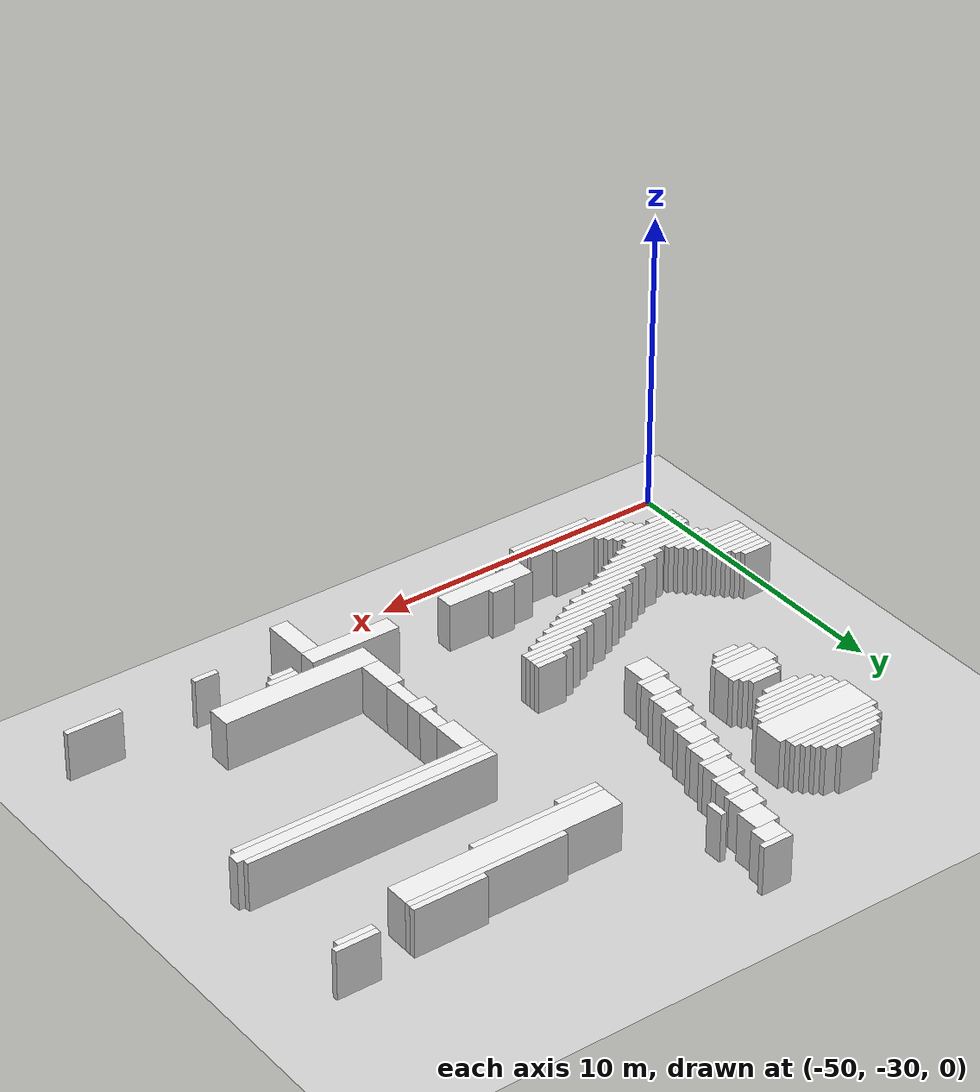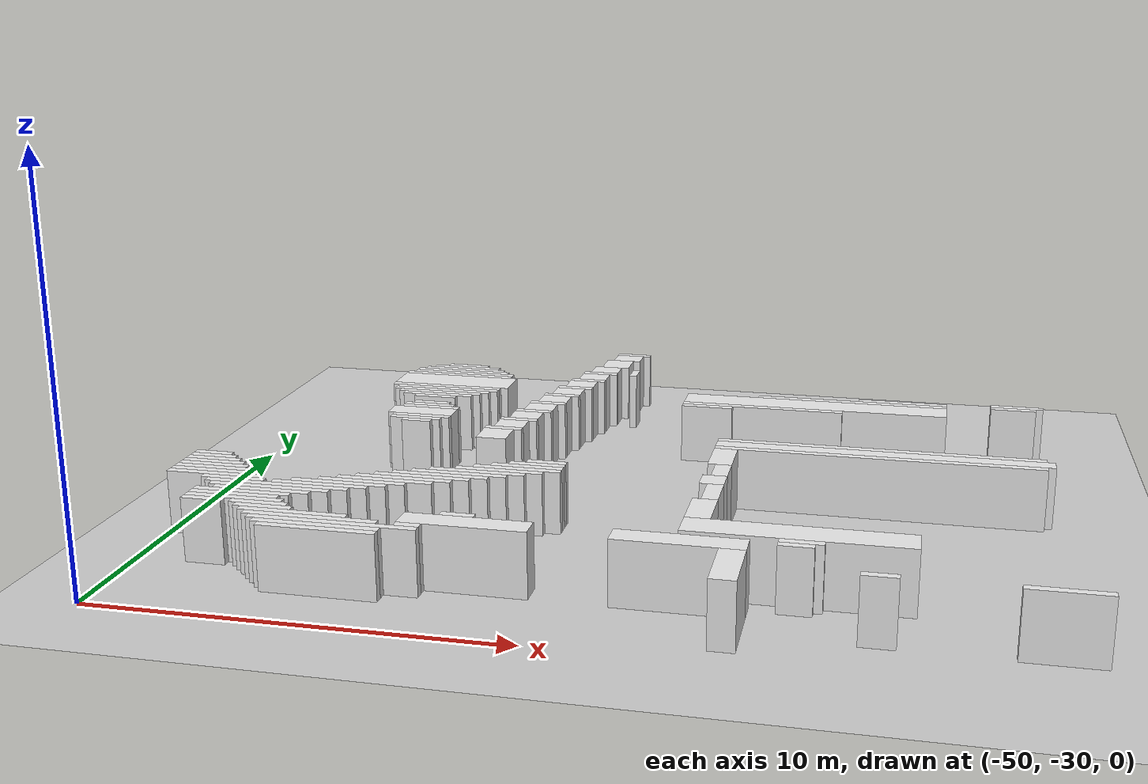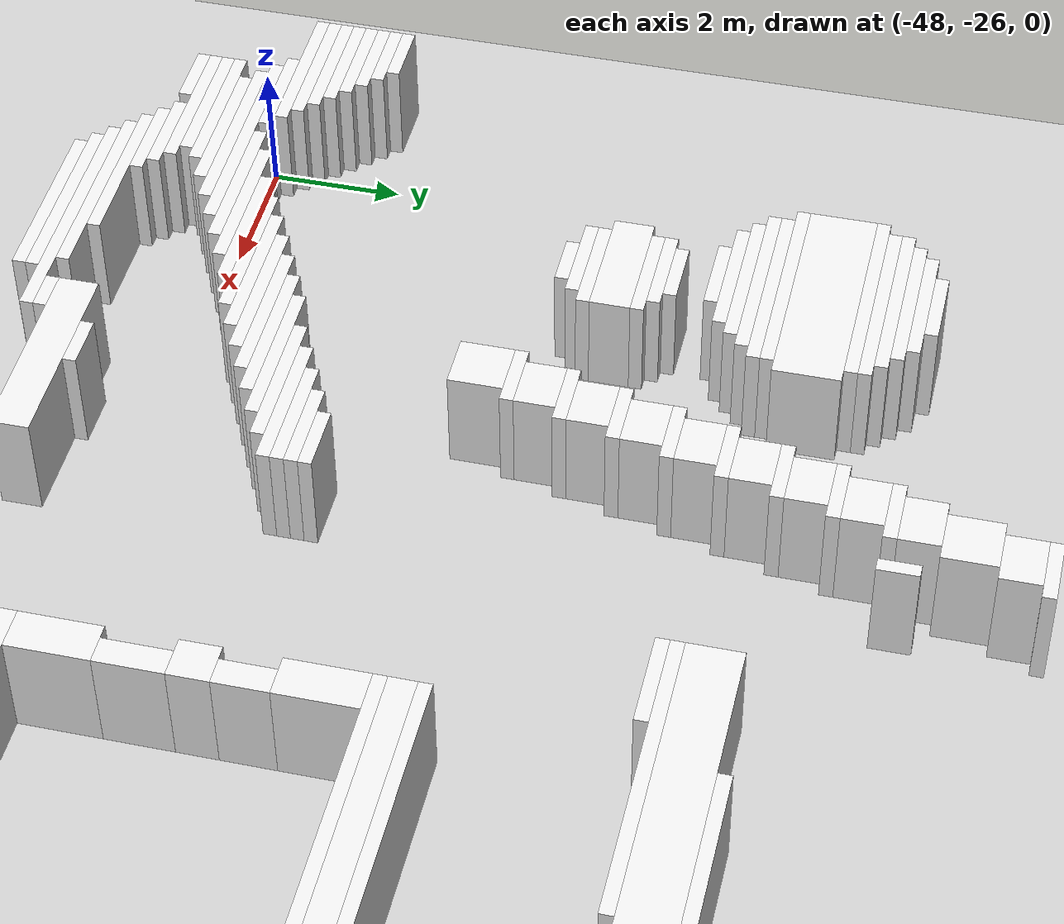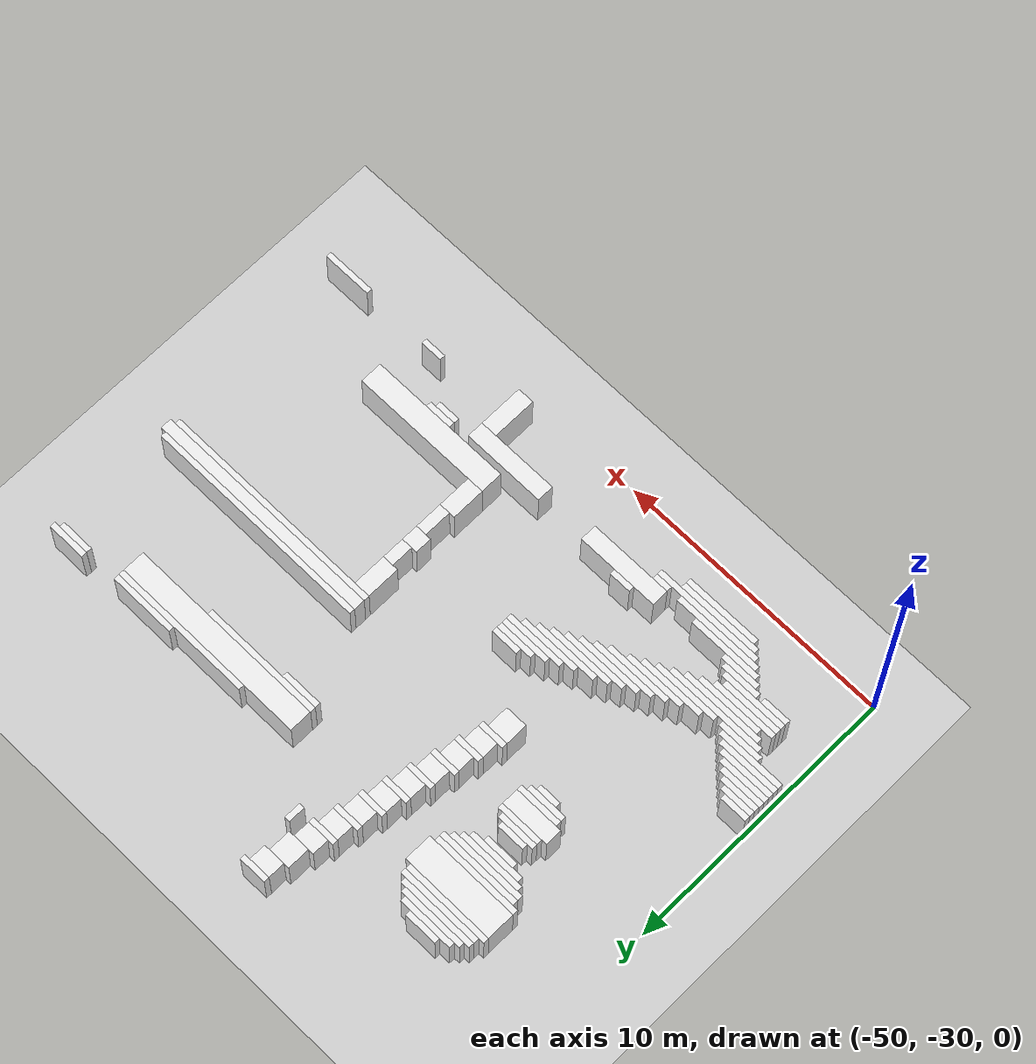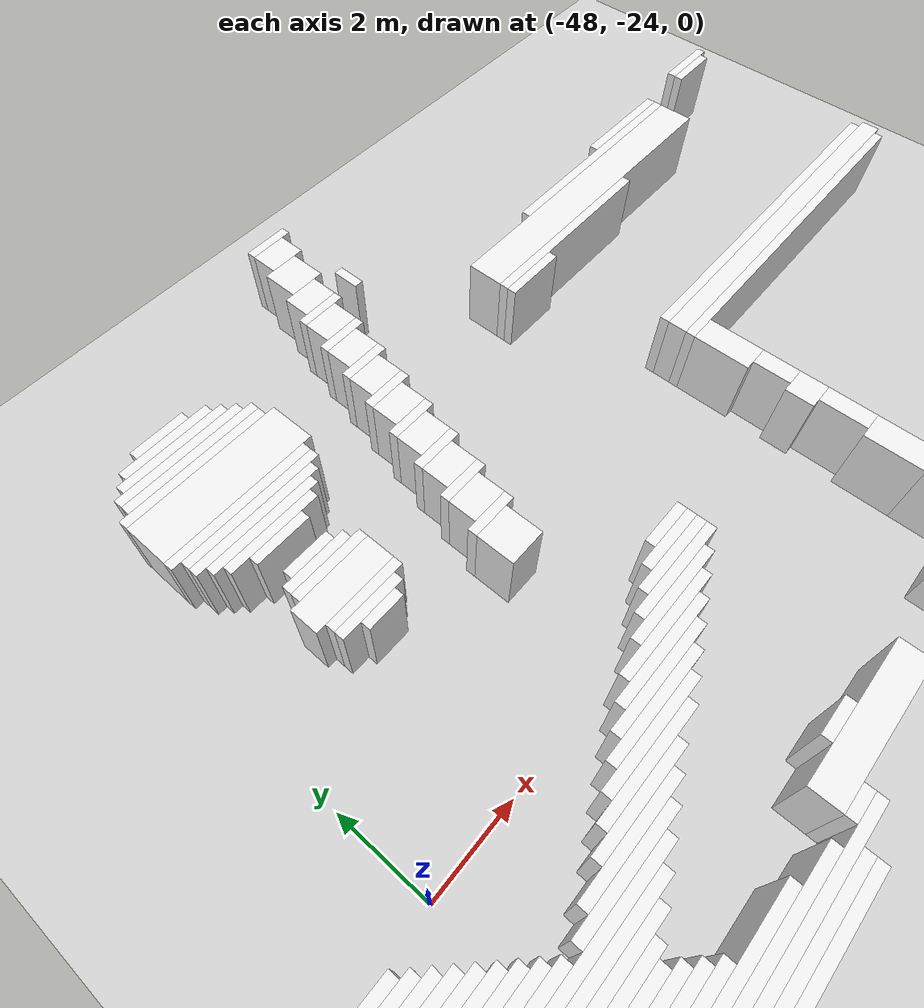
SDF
<sdf version="1.7">
 <world name="default">
  <model name="ground_plane">
   <static>1</static>
   <link name="link">
    <collision name="collision">
     <geometry><plane><normal>0 0 1</normal><size>120 120</size></plane></geometry>
    </collision>
    <visual name="visual">
     <geometry><plane><normal>0 0 1</normal><size>120 120</size></plane></geometry>
     <material>
      <script><uri>file://media/materials/scripts/gazebo.material</uri><name>Gazebo/Grey</name></script>
     </material>
    </visual>
   </link>
  </model>
  <model name="random_complex_01_model">
   <static>1</static>
   <link name="obs_2322">
    <pose>-40.9000 -13.1000 0.8000 0 0 0</pose>
    <collision name="obs_2322_col"><geometry><box><size>1.0000 0.2000 1.6000</size></box></geometry></collision>
    <visual name="obs_2322_vis">
     <geometry><box><size>1.0000 0.2000 1.6000</size></box></geometry>
     <material>
      <script><uri>file://media/materials/scripts/gazebo.material</uri><name>Gazebo/White</name></script>
     </material>
    </visual>
   </link>
   <link name="obs_2339">
    <pose>-41.0000 -13.5000 0.8000 0 0 0</pose>
    <collision name="obs_2339_col"><geometry><box><size>0.8000 0.6000 1.6000</size></box></geometry></collision>
    <visual name="obs_2339_vis">
     <geometry><box><size>0.8000 0.6000 1.6000</size></box></geometry>
     <material>
      <script><uri>file://media/materials/scripts/gazebo.material</uri><name>Gazebo/White</name></script>
     </material>
    </visual>
   </link>
   <link name="obs_2366">
    <pose>-41.2000 -14.2000 0.8000 0 0 0</pose>
    <collision name="obs_2366_col"><geometry><box><size>0.8000 0.8000 1.6000</size></box></geometry></collision>
    <visual name="obs_2366_vis">
     <geometry><box><size>0.8000 0.8000 1.6000</size></box></geometry>
     <material>
      <script><uri>file://media/materials/scripts/gazebo.material</uri><name>Gazebo/White</name></script>
     </material>
    </visual>
   </link>
   <link name="obs_2395">
    <pose>-41.4000 -14.9000 0.8000 0 0 0</pose>
    <collision name="obs_2395_col"><geometry><box><size>0.8000 0.6000 1.6000</size></box></geometry></collision>
    <visual name="obs_2395_vis">
     <geometry><box><size>0.8000 0.6000 1.6000</size></box></geometry>
     <material>
      <script><uri>file://media/materials/scripts/gazebo.material</uri><name>Gazebo/White</name></script>
     </material>
    </visual>
   </link>
   <link name="obs_2408">
    <pose>-40.5000 -15.1000 0.8000 0 0 0</pose>
    <collision name="obs_2408_col"><geometry><box><size>0.2000 0.6000 1.6000</size></box></geometry></collision>
    <visual name="obs_2408_vis">
     <geometry><box><size>0.2000 0.6000 1.6000</size></box></geometry>
     <material>
      <script><uri>file://media/materials/scripts/gazebo.material</uri><name>Gazebo/White</name></script>
     </material>
    </visual>
   </link>
   <link name="obs_2409">
    <pose>-45.6000 -15.3000 0.8000 0 0 0</pose>
    <collision name="obs_2409_col"><geometry><box><size>1.2000 0.2000 1.6000</size></box></geometry></collision>
    <visual name="obs_2409_vis">
     <geometry><box><size>1.2000 0.2000 1.6000</size></box></geometry>
     <material>
      <script><uri>file://media/materials/scripts/gazebo.material</uri><name>Gazebo/White</name></script>
     </material>
    </visual>
   </link>
   <link name="obs_2410">
    <pose>-41.5000 -15.3000 0.8000 0 0 0</pose>
    <collision name="obs_2410_col"><geometry><box><size>1.0000 0.2000 1.6000</size></box></geometry></collision>
    <visual name="obs_2410_vis">
     <geometry><box><size>1.0000 0.2000 1.6000</size></box></geometry>
     <material>
      <script><uri>file://media/materials/scripts/gazebo.material</uri><name>Gazebo/White</name></script>
     </material>
    </visual>
   </link>
   <link name="obs_2420">
    <pose>-45.6000 -15.5000 0.8000 0 0 0</pose>
    <collision name="obs_2420_col"><geometry><box><size>2.0000 0.2000 1.6000</size></box></geometry></collision>
    <visual name="obs_2420_vis">
     <geometry><box><size>2.0000 0.2000 1.6000</size></box></geometry>
     <material>
      <script><uri>file://media/materials/scripts/gazebo.material</uri><name>Gazebo/White</name></script>
     </material>
    </visual>
   </link>
   <link name="obs_2432">
    <pose>-45.6000 -15.7000 0.8000 0 0 0</pose>
    <collision name="obs_2432_col"><geometry><box><size>2.4000 0.2000 1.6000</size></box></geometry></collision>
    <visual name="obs_2432_vis">
     <geometry><box><size>2.4000 0.2000 1.6000</size></box></geometry>
     <material>
      <script><uri>file://media/materials/scripts/gazebo.material</uri><name>Gazebo/White</name></script>
     </material>
    </visual>
   </link>
   <link name="obs_2441">
    <pose>-41.6000 -15.7000 0.8000 0 0 0</pose>
    <collision name="obs_2441_col"><geometry><box><size>0.8000 0.6000 1.6000</size></box></geometry></collision>
    <visual name="obs_2441_vis">
     <geometry><box><size>0.8000 0.6000 1.6000</size></box></geometry>
     <material>
      <script><uri>file://media/materials/scripts/gazebo.material</uri><name>Gazebo/White</name></script>
     </material>
    </visual>
   </link>
   <link name="obs_2444">
    <pose>-45.6000 -15.9000 0.8000 0 0 0</pose>
    <collision name="obs_2444_col"><geometry><box><size>2.8000 0.2000 1.6000</size></box></geometry></collision>
    <visual name="obs_2444_vis">
     <geometry><box><size>2.8000 0.2000 1.6000</size></box></geometry>
     <material>
      <script><uri>file://media/materials/scripts/gazebo.material</uri><name>Gazebo/White</name></script>
     </material>
    </visual>
   </link>
   <link name="obs_2454">
    <pose>-45.5000 -16.1000 0.8000 0 0 0</pose>
    <collision name="obs_2454_col"><geometry><box><size>3.0000 0.2000 1.6000</size></box></geometry></collision>
    <visual name="obs_2454_vis">
     <geometry><box><size>3.0000 0.2000 1.6000</size></box></geometry>
     <material>
      <script><uri>file://media/materials/scripts/gazebo.material</uri><name>Gazebo/White</name></script>
     </material>
    </visual>
   </link>
   <link name="obs_2455">
    <pose>-41.7000 -16.1000 0.8000 0 0 0</pose>
    <collision name="obs_2455_col"><geometry><box><size>1.0000 0.2000 1.6000</size></box></geometry></collision>
    <visual name="obs_2455_vis">
     <geometry><box><size>1.0000 0.2000 1.6000</size></box></geometry>
     <material>
      <script><uri>file://media/materials/scripts/gazebo.material</uri><name>Gazebo/White</name></script>
     </material>
    </visual>
   </link>
   <link name="obs_2464">
    <pose>-45.6000 -16.3000 0.8000 0 0 0</pose>
    <collision name="obs_2464_col"><geometry><box><size>3.2000 0.2000 1.6000</size></box></geometry></collision>
    <visual name="obs_2464_vis">
     <geometry><box><size>3.2000 0.2000 1.6000</size></box></geometry>
     <material>
      <script><uri>file://media/materials/scripts/gazebo.material</uri><name>Gazebo/White</name></script>
     </material>
    </visual>
   </link>
   <link name="obs_2465">
    <pose>-29.5000 -16.3000 0.8000 0 0 0</pose>
    <collision name="obs_2465_col"><geometry><box><size>1.4000 0.2000 1.6000</size></box></geometry></collision>
    <visual name="obs_2465_vis">
     <geometry><box><size>1.4000 0.2000 1.6000</size></box></geometry>
     <material>
      <script><uri>file://media/materials/scripts/gazebo.material</uri><name>Gazebo/White</name></script>
     </material>
    </visual>
   </link>
   <link name="obs_2477">
    <pose>-32.6000 -16.5000 0.8000 0 0 0</pose>
    <collision name="obs_2477_col"><geometry><box><size>2.4000 0.2000 1.6000</size></box></geometry></collision>
    <visual name="obs_2477_vis">
     <geometry><box><size>2.4000 0.2000 1.6000</size></box></geometry>
     <material>
      <script><uri>file://media/materials/scripts/gazebo.material</uri><name>Gazebo/White</name></script>
     </material>
    </visual>
   </link>
   <link name="obs_2478">
    <pose>-29.6000 -16.5000 0.8000 0 0 0</pose>
    <collision name="obs_2478_col"><geometry><box><size>1.2000 0.2000 1.6000</size></box></geometry></collision>
    <visual name="obs_2478_vis">
     <geometry><box><size>1.2000 0.2000 1.6000</size></box></geometry>
     <material>
      <script><uri>file://media/materials/scripts/gazebo.material</uri><name>Gazebo/White</name></script>
     </material>
    </visual>
   </link>
   <link name="obs_2484">
    <pose>-41.8000 -16.5000 0.8000 0 0 0</pose>
    <collision name="obs_2484_col"><geometry><box><size>0.8000 0.6000 1.6000</size></box></geometry></collision>
    <visual name="obs_2484_vis">
     <geometry><box><size>0.8000 0.6000 1.6000</size></box></geometry>
     <material>
      <script><uri>file://media/materials/scripts/gazebo.material</uri><name>Gazebo/White</name></script>
     </material>
    </visual>
   </link>
   <link name="obs_2485">
    <pose>-34.0000 -16.7000 0.8000 0 0 0</pose>
    <collision name="obs_2485_col"><geometry><box><size>5.2000 0.2000 1.6000</size></box></geometry></collision>
    <visual name="obs_2485_vis">
     <geometry><box><size>5.2000 0.2000 1.6000</size></box></geometry>
     <material>
      <script><uri>file://media/materials/scripts/gazebo.material</uri><name>Gazebo/White</name></script>
     </material>
    </visual>
   </link>
   <link name="obs_2488">
    <pose>-41.9000 -16.9000 0.8000 0 0 0</pose>
    <collision name="obs_2488_col"><geometry><box><size>1.0000 0.2000 1.6000</size></box></geometry></collision>
    <visual name="obs_2488_vis">
     <geometry><box><size>1.0000 0.2000 1.6000</size></box></geometry>
     <material>
      <script><uri>file://media/materials/scripts/gazebo.material</uri><name>Gazebo/White</name></script>
     </material>
    </visual>
   </link>
   <link name="obs_2491">
    <pose>-45.5000 -16.9000 0.8000 0 0 0</pose>
    <collision name="obs_2491_col"><geometry><box><size>3.4000 1.0000 1.6000</size></box></geometry></collision>
    <visual name="obs_2491_vis">
     <geometry><box><size>3.4000 1.0000 1.6000</size></box></geometry>
     <material>
      <script><uri>file://media/materials/scripts/gazebo.material</uri><name>Gazebo/White</name></script>
     </material>
    </visual>
   </link>
   <link name="obs_2494">
    <pose>-35.0000 -17.2000 0.8000 0 0 0</pose>
    <collision name="obs_2494_col"><geometry><box><size>7.2000 0.8000 1.6000</size></box></geometry></collision>
    <visual name="obs_2494_vis">
     <geometry><box><size>7.2000 0.8000 1.6000</size></box></geometry>
     <material>
      <script><uri>file://media/materials/scripts/gazebo.material</uri><name>Gazebo/White</name></script>
     </material>
    </visual>
   </link>
   <link name="obs_2495">
    <pose>-42.0000 -17.3000 0.8000 0 0 0</pose>
    <collision name="obs_2495_col"><geometry><box><size>0.8000 0.6000 1.6000</size></box></geometry></collision>
    <visual name="obs_2495_vis">
     <geometry><box><size>0.8000 0.6000 1.6000</size></box></geometry>
     <material>
      <script><uri>file://media/materials/scripts/gazebo.material</uri><name>Gazebo/White</name></script>
     </material>
    </visual>
   </link>
   <link name="obs_2496">
    <pose>-45.6000 -17.5000 0.8000 0 0 0</pose>
    <collision name="obs_2496_col"><geometry><box><size>3.2000 0.2000 1.6000</size></box></geometry></collision>
    <visual name="obs_2496_vis">
     <geometry><box><size>3.2000 0.2000 1.6000</size></box></geometry>
     <material>
      <script><uri>file://media/materials/scripts/gazebo.material</uri><name>Gazebo/White</name></script>
     </material>
    </visual>
   </link>
   <link name="obs_2500">
    <pose>-45.5000 -17.7000 0.8000 0 0 0</pose>
    <collision name="obs_2500_col"><geometry><box><size>3.0000 0.2000 1.6000</size></box></geometry></collision>
    <visual name="obs_2500_vis">
     <geometry><box><size>3.0000 0.2000 1.6000</size></box></geometry>
     <material>
      <script><uri>file://media/materials/scripts/gazebo.material</uri><name>Gazebo/White</name></script>
     </material>
    </visual>
   </link>
   <link name="obs_2501">
    <pose>-42.1000 -17.7000 0.8000 0 0 0</pose>
    <collision name="obs_2501_col"><geometry><box><size>1.0000 0.2000 1.6000</size></box></geometry></collision>
    <visual name="obs_2501_vis">
     <geometry><box><size>1.0000 0.2000 1.6000</size></box></geometry>
     <material>
      <script><uri>file://media/materials/scripts/gazebo.material</uri><name>Gazebo/White</name></script>
     </material>
    </visual>
   </link>
   <link name="obs_2502">
    <pose>-36.4000 -17.7000 0.8000 0 0 0</pose>
    <collision name="obs_2502_col"><geometry><box><size>4.4000 0.2000 1.6000</size></box></geometry></collision>
    <visual name="obs_2502_vis">
     <geometry><box><size>4.4000 0.2000 1.6000</size></box></geometry>
     <material>
      <script><uri>file://media/materials/scripts/gazebo.material</uri><name>Gazebo/White</name></script>
     </material>
    </visual>
   </link>
   <link name="obs_2507">
    <pose>-45.6000 -17.9000 0.8000 0 0 0</pose>
    <collision name="obs_2507_col"><geometry><box><size>2.8000 0.2000 1.6000</size></box></geometry></collision>
    <visual name="obs_2507_vis">
     <geometry><box><size>2.8000 0.2000 1.6000</size></box></geometry>
     <material>
      <script><uri>file://media/materials/scripts/gazebo.material</uri><name>Gazebo/White</name></script>
     </material>
    </visual>
   </link>
   <link name="obs_2508">
    <pose>-37.9000 -17.9000 0.8000 0 0 0</pose>
    <collision name="obs_2508_col"><geometry><box><size>1.4000 0.2000 1.6000</size></box></geometry></collision>
    <visual name="obs_2508_vis">
     <geometry><box><size>1.4000 0.2000 1.6000</size></box></geometry>
     <material>
      <script><uri>file://media/materials/scripts/gazebo.material</uri><name>Gazebo/White</name></script>
     </material>
    </visual>
   </link>
   <link name="obs_2513">
    <pose>-45.6000 -18.1000 0.8000 0 0 0</pose>
    <collision name="obs_2513_col"><geometry><box><size>2.4000 0.2000 1.6000</size></box></geometry></collision>
    <visual name="obs_2513_vis">
     <geometry><box><size>2.4000 0.2000 1.6000</size></box></geometry>
     <material>
      <script><uri>file://media/materials/scripts/gazebo.material</uri><name>Gazebo/White</name></script>
     </material>
    </visual>
   </link>
   <link name="obs_2519">
    <pose>-42.2000 -18.1000 0.8000 0 0 0</pose>
    <collision name="obs_2519_col"><geometry><box><size>0.8000 0.6000 1.6000</size></box></geometry></collision>
    <visual name="obs_2519_vis">
     <geometry><box><size>0.8000 0.6000 1.6000</size></box></geometry>
     <material>
      <script><uri>file://media/materials/scripts/gazebo.material</uri><name>Gazebo/White</name></script>
     </material>
    </visual>
   </link>
   <link name="obs_2522">
    <pose>-45.6000 -18.3000 0.8000 0 0 0</pose>
    <collision name="obs_2522_col"><geometry><box><size>2.0000 0.2000 1.6000</size></box></geometry></collision>
    <visual name="obs_2522_vis">
     <geometry><box><size>2.0000 0.2000 1.6000</size></box></geometry>
     <material>
      <script><uri>file://media/materials/scripts/gazebo.material</uri><name>Gazebo/White</name></script>
     </material>
    </visual>
   </link>
   <link name="obs_2527">
    <pose>-45.6000 -18.5000 0.8000 0 0 0</pose>
    <collision name="obs_2527_col"><geometry><box><size>1.2000 0.2000 1.6000</size></box></geometry></collision>
    <visual name="obs_2527_vis">
     <geometry><box><size>1.2000 0.2000 1.6000</size></box></geometry>
     <material>
      <script><uri>file://media/materials/scripts/gazebo.material</uri><name>Gazebo/White</name></script>
     </material>
    </visual>
   </link>
   <link name="obs_2528">
    <pose>-42.3000 -18.5000 0.8000 0 0 0</pose>
    <collision name="obs_2528_col"><geometry><box><size>1.0000 0.2000 1.6000</size></box></geometry></collision>
    <visual name="obs_2528_vis">
     <geometry><box><size>1.0000 0.2000 1.6000</size></box></geometry>
     <material>
      <script><uri>file://media/materials/scripts/gazebo.material</uri><name>Gazebo/White</name></script>
     </material>
    </visual>
   </link>
   <link name="obs_2540">
    <pose>-42.4000 -18.9000 0.8000 0 0 0</pose>
    <collision name="obs_2540_col"><geometry><box><size>0.8000 0.6000 1.6000</size></box></geometry></collision>
    <visual name="obs_2540_vis">
     <geometry><box><size>0.8000 0.6000 1.6000</size></box></geometry>
     <material>
      <script><uri>file://media/materials/scripts/gazebo.material</uri><name>Gazebo/White</name></script>
     </material>
    </visual>
   </link>
   <link name="obs_2541">
    <pose>-45.5000 -19.1000 0.8000 0 0 0</pose>
    <collision name="obs_2541_col"><geometry><box><size>1.0000 0.2000 1.6000</size></box></geometry></collision>
    <visual name="obs_2541_vis">
     <geometry><box><size>1.0000 0.2000 1.6000</size></box></geometry>
     <material>
      <script><uri>file://media/materials/scripts/gazebo.material</uri><name>Gazebo/White</name></script>
     </material>
    </visual>
   </link>
   <link name="obs_2549">
    <pose>-45.5000 -19.3000 0.8000 0 0 0</pose>
    <collision name="obs_2549_col"><geometry><box><size>1.4000 0.2000 1.6000</size></box></geometry></collision>
    <visual name="obs_2549_vis">
     <geometry><box><size>1.4000 0.2000 1.6000</size></box></geometry>
     <material>
      <script><uri>file://media/materials/scripts/gazebo.material</uri><name>Gazebo/White</name></script>
     </material>
    </visual>
   </link>
   <link name="obs_2550">
    <pose>-42.5000 -19.3000 0.8000 0 0 0</pose>
    <collision name="obs_2550_col"><geometry><box><size>1.0000 0.2000 1.6000</size></box></geometry></collision>
    <visual name="obs_2550_vis">
     <geometry><box><size>1.0000 0.2000 1.6000</size></box></geometry>
     <material>
      <script><uri>file://media/materials/scripts/gazebo.material</uri><name>Gazebo/White</name></script>
     </material>
    </visual>
   </link>
   <link name="obs_2559">
    <pose>-45.4000 -19.5000 0.8000 0 0 0</pose>
    <collision name="obs_2559_col"><geometry><box><size>1.6000 0.2000 1.6000</size></box></geometry></collision>
    <visual name="obs_2559_vis">
     <geometry><box><size>1.6000 0.2000 1.6000</size></box></geometry>
     <material>
      <script><uri>file://media/materials/scripts/gazebo.material</uri><name>Gazebo/White</name></script>
     </material>
    </visual>
   </link>
   <link name="obs_2573">
    <pose>-42.6000 -19.7000 0.8000 0 0 0</pose>
    <collision name="obs_2573_col"><geometry><box><size>0.8000 0.6000 1.6000</size></box></geometry></collision>
    <visual name="obs_2573_vis">
     <geometry><box><size>0.8000 0.6000 1.6000</size></box></geometry>
     <material>
      <script><uri>file://media/materials/scripts/gazebo.material</uri><name>Gazebo/White</name></script>
     </material>
    </visual>
   </link>
   <link name="obs_2580">
    <pose>-45.5000 -19.9000 0.8000 0 0 0</pose>
    <collision name="obs_2580_col"><geometry><box><size>1.8000 0.6000 1.6000</size></box></geometry></collision>
    <visual name="obs_2580_vis">
     <geometry><box><size>1.8000 0.6000 1.6000</size></box></geometry>
     <material>
      <script><uri>file://media/materials/scripts/gazebo.material</uri><name>Gazebo/White</name></script>
     </material>
    </visual>
   </link>
   <link name="obs_2582">
    <pose>-42.7000 -20.1000 0.8000 0 0 0</pose>
    <collision name="obs_2582_col"><geometry><box><size>1.0000 0.2000 1.6000</size></box></geometry></collision>
    <visual name="obs_2582_vis">
     <geometry><box><size>1.0000 0.2000 1.6000</size></box></geometry>
     <material>
      <script><uri>file://media/materials/scripts/gazebo.material</uri><name>Gazebo/White</name></script>
     </material>
    </visual>
   </link>
   <link name="obs_2588">
    <pose>-45.4000 -20.3000 0.8000 0 0 0</pose>
    <collision name="obs_2588_col"><geometry><box><size>1.6000 0.2000 1.6000</size></box></geometry></collision>
    <visual name="obs_2588_vis">
     <geometry><box><size>1.6000 0.2000 1.6000</size></box></geometry>
     <material>
      <script><uri>file://media/materials/scripts/gazebo.material</uri><name>Gazebo/White</name></script>
     </material>
    </visual>
   </link>
   <link name="obs_2595">
    <pose>-45.5000 -20.5000 0.8000 0 0 0</pose>
    <collision name="obs_2595_col"><geometry><box><size>1.4000 0.2000 1.6000</size></box></geometry></collision>
    <visual name="obs_2595_vis">
     <geometry><box><size>1.4000 0.2000 1.6000</size></box></geometry>
     <material>
      <script><uri>file://media/materials/scripts/gazebo.material</uri><name>Gazebo/White</name></script>
     </material>
    </visual>
   </link>
   <link name="obs_2600">
    <pose>-42.8000 -20.5000 0.8000 0 0 0</pose>
    <collision name="obs_2600_col"><geometry><box><size>0.8000 0.6000 1.6000</size></box></geometry></collision>
    <visual name="obs_2600_vis">
     <geometry><box><size>0.8000 0.6000 1.6000</size></box></geometry>
     <material>
      <script><uri>file://media/materials/scripts/gazebo.material</uri><name>Gazebo/White</name></script>
     </material>
    </visual>
   </link>
   <link name="obs_2602">
    <pose>-45.4000 -20.7000 0.8000 0 0 0</pose>
    <collision name="obs_2602_col"><geometry><box><size>0.8000 0.2000 1.6000</size></box></geometry></collision>
    <visual name="obs_2602_vis">
     <geometry><box><size>0.8000 0.2000 1.6000</size></box></geometry>
     <material>
      <script><uri>file://media/materials/scripts/gazebo.material</uri><name>Gazebo/White</name></script>
     </material>
    </visual>
   </link>
   <link name="obs_2603">
    <pose>-33.1000 -20.7000 0.8000 0 0 0</pose>
    <collision name="obs_2603_col"><geometry><box><size>8.2000 0.2000 1.6000</size></box></geometry></collision>
    <visual name="obs_2603_vis">
     <geometry><box><size>8.2000 0.2000 1.6000</size></box></geometry>
     <material>
      <script><uri>file://media/materials/scripts/gazebo.material</uri><name>Gazebo/White</name></script>
     </material>
    </visual>
   </link>
   <link name="obs_2611">
    <pose>-42.9000 -20.9000 0.8000 0 0 0</pose>
    <collision name="obs_2611_col"><geometry><box><size>1.0000 0.2000 1.6000</size></box></geometry></collision>
    <visual name="obs_2611_vis">
     <geometry><box><size>1.0000 0.2000 1.6000</size></box></geometry>
     <material>
      <script><uri>file://media/materials/scripts/gazebo.material</uri><name>Gazebo/White</name></script>
     </material>
    </visual>
   </link>
   <link name="obs_2620">
    <pose>-33.0000 -21.0000 0.8000 0 0 0</pose>
    <collision name="obs_2620_col"><geometry><box><size>8.4000 0.4000 1.6000</size></box></geometry></collision>
    <visual name="obs_2620_vis">
     <geometry><box><size>8.4000 0.4000 1.6000</size></box></geometry>
     <material>
      <script><uri>file://media/materials/scripts/gazebo.material</uri><name>Gazebo/White</name></script>
     </material>
    </visual>
   </link>
   <link name="obs_2630">
    <pose>-33.1000 -21.3000 0.8000 0 0 0</pose>
    <collision name="obs_2630_col"><geometry><box><size>8.2000 0.2000 1.6000</size></box></geometry></collision>
    <visual name="obs_2630_vis">
     <geometry><box><size>8.2000 0.2000 1.6000</size></box></geometry>
     <material>
      <script><uri>file://media/materials/scripts/gazebo.material</uri><name>Gazebo/White</name></script>
     </material>
    </visual>
   </link>
   <link name="obs_2637">
    <pose>-43.0000 -21.4000 0.8000 0 0 0</pose>
    <collision name="obs_2637_col"><geometry><box><size>0.8000 0.8000 1.6000</size></box></geometry></collision>
    <visual name="obs_2637_vis">
     <geometry><box><size>0.8000 0.8000 1.6000</size></box></geometry>
     <material>
      <script><uri>file://media/materials/scripts/gazebo.material</uri><name>Gazebo/White</name></script>
     </material>
    </visual>
   </link>
   <link name="obs_2658">
    <pose>-36.9000 -22.0000 0.8000 0 0 0</pose>
    <collision name="obs_2658_col"><geometry><box><size>0.6000 1.2000 1.6000</size></box></geometry></collision>
    <visual name="obs_2658_vis">
     <geometry><box><size>0.6000 1.2000 1.6000</size></box></geometry>
     <material>
      <script><uri>file://media/materials/scripts/gazebo.material</uri><name>Gazebo/White</name></script>
     </material>
    </visual>
   </link>
   <link name="obs_2685">
    <pose>-36.8000 -23.0000 0.8000 0 0 0</pose>
    <collision name="obs_2685_col"><geometry><box><size>0.4000 0.8000 1.6000</size></box></geometry></collision>
    <visual name="obs_2685_vis">
     <geometry><box><size>0.4000 0.8000 1.6000</size></box></geometry>
     <material>
      <script><uri>file://media/materials/scripts/gazebo.material</uri><name>Gazebo/White</name></script>
     </material>
    </visual>
   </link>
   <link name="obs_2688">
    <pose>-41.1000 -23.3000 0.8000 0 0 0</pose>
    <collision name="obs_2688_col"><geometry><box><size>1.0000 0.2000 1.6000</size></box></geometry></collision>
    <visual name="obs_2688_vis">
     <geometry><box><size>1.0000 0.2000 1.6000</size></box></geometry>
     <material>
      <script><uri>file://media/materials/scripts/gazebo.material</uri><name>Gazebo/White</name></script>
     </material>
    </visual>
   </link>
   <link name="obs_2696">
    <pose>-41.3000 -23.5000 0.8000 0 0 0</pose>
    <collision name="obs_2696_col"><geometry><box><size>1.4000 0.2000 1.6000</size></box></geometry></collision>
    <visual name="obs_2696_vis">
     <geometry><box><size>1.4000 0.2000 1.6000</size></box></geometry>
     <material>
      <script><uri>file://media/materials/scripts/gazebo.material</uri><name>Gazebo/White</name></script>
     </material>
    </visual>
   </link>
   <link name="obs_2705">
    <pose>-41.5000 -23.7000 0.8000 0 0 0</pose>
    <collision name="obs_2705_col"><geometry><box><size>1.8000 0.2000 1.6000</size></box></geometry></collision>
    <visual name="obs_2705_vis">
     <geometry><box><size>1.8000 0.2000 1.6000</size></box></geometry>
     <material>
      <script><uri>file://media/materials/scripts/gazebo.material</uri><name>Gazebo/White</name></script>
     </material>
    </visual>
   </link>
   <link name="obs_2710">
    <pose>-36.9000 -23.7000 0.8000 0 0 0</pose>
    <collision name="obs_2710_col"><geometry><box><size>0.6000 0.6000 1.6000</size></box></geometry></collision>
    <visual name="obs_2710_vis">
     <geometry><box><size>0.6000 0.6000 1.6000</size></box></geometry>
     <material>
      <script><uri>file://media/materials/scripts/gazebo.material</uri><name>Gazebo/White</name></script>
     </material>
    </visual>
   </link>
   <link name="obs_2712">
    <pose>-41.7000 -23.9000 0.8000 0 0 0</pose>
    <collision name="obs_2712_col"><geometry><box><size>2.2000 0.2000 1.6000</size></box></geometry></collision>
    <visual name="obs_2712_vis">
     <geometry><box><size>2.2000 0.2000 1.6000</size></box></geometry>
     <material>
      <script><uri>file://media/materials/scripts/gazebo.material</uri><name>Gazebo/White</name></script>
     </material>
    </visual>
   </link>
   <link name="obs_2718">
    <pose>-42.1000 -24.1000 0.8000 0 0 0</pose>
    <collision name="obs_2718_col"><geometry><box><size>2.2000 0.2000 1.6000</size></box></geometry></collision>
    <visual name="obs_2718_vis">
     <geometry><box><size>2.2000 0.2000 1.6000</size></box></geometry>
     <material>
      <script><uri>file://media/materials/scripts/gazebo.material</uri><name>Gazebo/White</name></script>
     </material>
    </visual>
   </link>
   <link name="obs_2725">
    <pose>-49.5000 -24.3000 0.8000 0 0 0</pose>
    <collision name="obs_2725_col"><geometry><box><size>1.0000 0.2000 1.6000</size></box></geometry></collision>
    <visual name="obs_2725_vis">
     <geometry><box><size>1.0000 0.2000 1.6000</size></box></geometry>
     <material>
      <script><uri>file://media/materials/scripts/gazebo.material</uri><name>Gazebo/White</name></script>
     </material>
    </visual>
   </link>
   <link name="obs_2726">
    <pose>-42.6000 -24.3000 0.8000 0 0 0</pose>
    <collision name="obs_2726_col"><geometry><box><size>2.4000 0.2000 1.6000</size></box></geometry></collision>
    <visual name="obs_2726_vis">
     <geometry><box><size>2.4000 0.2000 1.6000</size></box></geometry>
     <material>
      <script><uri>file://media/materials/scripts/gazebo.material</uri><name>Gazebo/White</name></script>
     </material>
    </visual>
   </link>
   <link name="obs_2733">
    <pose>-49.4000 -24.5000 0.8000 0 0 0</pose>
    <collision name="obs_2733_col"><geometry><box><size>1.2000 0.2000 1.6000</size></box></geometry></collision>
    <visual name="obs_2733_vis">
     <geometry><box><size>1.2000 0.2000 1.6000</size></box></geometry>
     <material>
      <script><uri>file://media/materials/scripts/gazebo.material</uri><name>Gazebo/White</name></script>
     </material>
    </visual>
   </link>
   <link name="obs_2734">
    <pose>-43.0000 -24.5000 0.8000 0 0 0</pose>
    <collision name="obs_2734_col"><geometry><box><size>2.4000 0.2000 1.6000</size></box></geometry></collision>
    <visual name="obs_2734_vis">
     <geometry><box><size>2.4000 0.2000 1.6000</size></box></geometry>
     <material>
      <script><uri>file://media/materials/scripts/gazebo.material</uri><name>Gazebo/White</name></script>
     </material>
    </visual>
   </link>
   <link name="obs_2738">
    <pose>-49.3000 -24.7000 0.8000 0 0 0</pose>
    <collision name="obs_2738_col"><geometry><box><size>1.4000 0.2000 1.6000</size></box></geometry></collision>
    <visual name="obs_2738_vis">
     <geometry><box><size>1.4000 0.2000 1.6000</size></box></geometry>
     <material>
      <script><uri>file://media/materials/scripts/gazebo.material</uri><name>Gazebo/White</name></script>
     </material>
    </visual>
   </link>
   <link name="obs_2739">
    <pose>-43.4000 -24.7000 0.8000 0 0 0</pose>
    <collision name="obs_2739_col"><geometry><box><size>2.4000 0.2000 1.6000</size></box></geometry></collision>
    <visual name="obs_2739_vis">
     <geometry><box><size>2.4000 0.2000 1.6000</size></box></geometry>
     <material>
      <script><uri>file://media/materials/scripts/gazebo.material</uri><name>Gazebo/White</name></script>
     </material>
    </visual>
   </link>
   <link name="obs_2744">
    <pose>-36.8000 -24.5000 0.8000 0 0 0</pose>
    <collision name="obs_2744_col"><geometry><box><size>0.4000 1.0000 1.6000</size></box></geometry></collision>
    <visual name="obs_2744_vis">
     <geometry><box><size>0.4000 1.0000 1.6000</size></box></geometry>
     <material>
      <script><uri>file://media/materials/scripts/gazebo.material</uri><name>Gazebo/White</name></script>
     </material>
    </visual>
   </link>
   <link name="obs_2746">
    <pose>-49.2000 -24.9000 0.8000 0 0 0</pose>
    <collision name="obs_2746_col"><geometry><box><size>1.6000 0.2000 1.6000</size></box></geometry></collision>
    <visual name="obs_2746_vis">
     <geometry><box><size>1.6000 0.2000 1.6000</size></box></geometry>
     <material>
      <script><uri>file://media/materials/scripts/gazebo.material</uri><name>Gazebo/White</name></script>
     </material>
    </visual>
   </link>
   <link name="obs_2747">
    <pose>-43.8000 -24.9000 0.8000 0 0 0</pose>
    <collision name="obs_2747_col"><geometry><box><size>2.4000 0.2000 1.6000</size></box></geometry></collision>
    <visual name="obs_2747_vis">
     <geometry><box><size>2.4000 0.2000 1.6000</size></box></geometry>
     <material>
      <script><uri>file://media/materials/scripts/gazebo.material</uri><name>Gazebo/White</name></script>
     </material>
    </visual>
   </link>
   <link name="obs_2754">
    <pose>-49.1000 -25.1000 0.8000 0 0 0</pose>
    <collision name="obs_2754_col"><geometry><box><size>1.8000 0.2000 1.6000</size></box></geometry></collision>
    <visual name="obs_2754_vis">
     <geometry><box><size>1.8000 0.2000 1.6000</size></box></geometry>
     <material>
      <script><uri>file://media/materials/scripts/gazebo.material</uri><name>Gazebo/White</name></script>
     </material>
    </visual>
   </link>
   <link name="obs_2755">
    <pose>-44.2000 -25.1000 0.8000 0 0 0</pose>
    <collision name="obs_2755_col"><geometry><box><size>2.4000 0.2000 1.6000</size></box></geometry></collision>
    <visual name="obs_2755_vis">
     <geometry><box><size>2.4000 0.2000 1.6000</size></box></geometry>
     <material>
      <script><uri>file://media/materials/scripts/gazebo.material</uri><name>Gazebo/White</name></script>
     </material>
    </visual>
   </link>
   <link name="obs_2760">
    <pose>-49.0000 -25.3000 0.8000 0 0 0</pose>
    <collision name="obs_2760_col"><geometry><box><size>2.0000 0.2000 1.6000</size></box></geometry></collision>
    <visual name="obs_2760_vis">
     <geometry><box><size>2.0000 0.2000 1.6000</size></box></geometry>
     <material>
      <script><uri>file://media/materials/scripts/gazebo.material</uri><name>Gazebo/White</name></script>
     </material>
    </visual>
   </link>
   <link name="obs_2761">
    <pose>-44.6000 -25.3000 0.8000 0 0 0</pose>
    <collision name="obs_2761_col"><geometry><box><size>2.4000 0.2000 1.6000</size></box></geometry></collision>
    <visual name="obs_2761_vis">
     <geometry><box><size>2.4000 0.2000 1.6000</size></box></geometry>
     <material>
      <script><uri>file://media/materials/scripts/gazebo.material</uri><name>Gazebo/White</name></script>
     </material>
    </visual>
   </link>
   <link name="obs_2767">
    <pose>-48.9000 -25.5000 0.8000 0 0 0</pose>
    <collision name="obs_2767_col"><geometry><box><size>2.2000 0.2000 1.6000</size></box></geometry></collision>
    <visual name="obs_2767_vis">
     <geometry><box><size>2.2000 0.2000 1.6000</size></box></geometry>
     <material>
      <script><uri>file://media/materials/scripts/gazebo.material</uri><name>Gazebo/White</name></script>
     </material>
    </visual>
   </link>
   <link name="obs_2768">
    <pose>-45.1000 -25.5000 0.8000 0 0 0</pose>
    <collision name="obs_2768_col"><geometry><box><size>2.2000 0.2000 1.6000</size></box></geometry></collision>
    <visual name="obs_2768_vis">
     <geometry><box><size>2.2000 0.2000 1.6000</size></box></geometry>
     <material>
      <script><uri>file://media/materials/scripts/gazebo.material</uri><name>Gazebo/White</name></script>
     </material>
    </visual>
   </link>
   <link name="obs_2776">
    <pose>-48.8000 -25.7000 0.8000 0 0 0</pose>
    <collision name="obs_2776_col"><geometry><box><size>2.4000 0.2000 1.6000</size></box></geometry></collision>
    <visual name="obs_2776_vis">
     <geometry><box><size>2.4000 0.2000 1.6000</size></box></geometry>
     <material>
      <script><uri>file://media/materials/scripts/gazebo.material</uri><name>Gazebo/White</name></script>
     </material>
    </visual>
   </link>
   <link name="obs_2777">
    <pose>-45.6000 -25.7000 0.8000 0 0 0</pose>
    <collision name="obs_2777_col"><geometry><box><size>2.4000 0.2000 1.6000</size></box></geometry></collision>
    <visual name="obs_2777_vis">
     <geometry><box><size>2.4000 0.2000 1.6000</size></box></geometry>
     <material>
      <script><uri>file://media/materials/scripts/gazebo.material</uri><name>Gazebo/White</name></script>
     </material>
    </visual>
   </link>
   <link name="obs_2785">
    <pose>-48.2000 -25.9000 0.8000 0 0 0</pose>
    <collision name="obs_2785_col"><geometry><box><size>1.6000 0.2000 1.6000</size></box></geometry></collision>
    <visual name="obs_2785_vis">
     <geometry><box><size>1.6000 0.2000 1.6000</size></box></geometry>
     <material>
      <script><uri>file://media/materials/scripts/gazebo.material</uri><name>Gazebo/White</name></script>
     </material>
    </visual>
   </link>
   <link name="obs_2786">
    <pose>-46.0000 -25.9000 0.8000 0 0 0</pose>
    <collision name="obs_2786_col"><geometry><box><size>2.4000 0.2000 1.6000</size></box></geometry></collision>
    <visual name="obs_2786_vis">
     <geometry><box><size>2.4000 0.2000 1.6000</size></box></geometry>
     <material>
      <script><uri>file://media/materials/scripts/gazebo.material</uri><name>Gazebo/White</name></script>
     </material>
    </visual>
   </link>
   <link name="obs_2791">
    <pose>-36.9000 -25.6000 0.8000 0 0 0</pose>
    <collision name="obs_2791_col"><geometry><box><size>0.6000 1.2000 1.6000</size></box></geometry></collision>
    <visual name="obs_2791_vis">
     <geometry><box><size>0.6000 1.2000 1.6000</size></box></geometry>
     <material>
      <script><uri>file://media/materials/scripts/gazebo.material</uri><name>Gazebo/White</name></script>
     </material>
    </visual>
   </link>
   <link name="obs_2793">
    <pose>-47.0000 -26.1000 0.8000 0 0 0</pose>
    <collision name="obs_2793_col"><geometry><box><size>3.6000 0.2000 1.6000</size></box></geometry></collision>
    <visual name="obs_2793_vis">
     <geometry><box><size>3.6000 0.2000 1.6000</size></box></geometry>
     <material>
      <script><uri>file://media/materials/scripts/gazebo.material</uri><name>Gazebo/White</name></script>
     </material>
    </visual>
   </link>
   <link name="obs_2799">
    <pose>-47.1000 -26.3000 0.8000 0 0 0</pose>
    <collision name="obs_2799_col"><geometry><box><size>3.0000 0.2000 1.6000</size></box></geometry></collision>
    <visual name="obs_2799_vis">
     <geometry><box><size>3.0000 0.2000 1.6000</size></box></geometry>
     <material>
      <script><uri>file://media/materials/scripts/gazebo.material</uri><name>Gazebo/White</name></script>
     </material>
    </visual>
   </link>
   <link name="obs_2806">
    <pose>-47.2000 -26.5000 0.8000 0 0 0</pose>
    <collision name="obs_2806_col"><geometry><box><size>2.4000 0.2000 1.6000</size></box></geometry></collision>
    <visual name="obs_2806_vis">
     <geometry><box><size>2.4000 0.2000 1.6000</size></box></geometry>
     <material>
      <script><uri>file://media/materials/scripts/gazebo.material</uri><name>Gazebo/White</name></script>
     </material>
    </visual>
   </link>
   <link name="obs_2811">
    <pose>-47.6000 -26.7000 0.8000 0 0 0</pose>
    <collision name="obs_2811_col"><geometry><box><size>2.4000 0.2000 1.6000</size></box></geometry></collision>
    <visual name="obs_2811_vis">
     <geometry><box><size>2.4000 0.2000 1.6000</size></box></geometry>
     <material>
      <script><uri>file://media/materials/scripts/gazebo.material</uri><name>Gazebo/White</name></script>
     </material>
    </visual>
   </link>
   <link name="obs_2814">
    <pose>-34.6000 -26.6000 0.8000 0 0 0</pose>
    <collision name="obs_2814_col"><geometry><box><size>5.2000 0.8000 1.6000</size></box></geometry></collision>
    <visual name="obs_2814_vis">
     <geometry><box><size>5.2000 0.8000 1.6000</size></box></geometry>
     <material>
      <script><uri>file://media/materials/scripts/gazebo.material</uri><name>Gazebo/White</name></script>
     </material>
    </visual>
   </link>
   <link name="obs_2816">
    <pose>-47.7000 -26.9000 0.8000 0 0 0</pose>
    <collision name="obs_2816_col"><geometry><box><size>2.2000 0.2000 1.6000</size></box></geometry></collision>
    <visual name="obs_2816_vis">
     <geometry><box><size>2.2000 0.2000 1.6000</size></box></geometry>
     <material>
      <script><uri>file://media/materials/scripts/gazebo.material</uri><name>Gazebo/White</name></script>
     </material>
    </visual>
   </link>
   <link name="obs_2823">
    <pose>-47.6000 -27.1000 0.8000 0 0 0</pose>
    <collision name="obs_2823_col"><geometry><box><size>2.4000 0.2000 1.6000</size></box></geometry></collision>
    <visual name="obs_2823_vis">
     <geometry><box><size>2.4000 0.2000 1.6000</size></box></geometry>
     <material>
      <script><uri>file://media/materials/scripts/gazebo.material</uri><name>Gazebo/White</name></script>
     </material>
    </visual>
   </link>
   <link name="obs_2824">
    <pose>-42.2000 -27.1000 0.8000 0 0 0</pose>
    <collision name="obs_2824_col"><geometry><box><size>0.8000 0.2000 1.6000</size></box></geometry></collision>
    <visual name="obs_2824_vis">
     <geometry><box><size>0.8000 0.2000 1.6000</size></box></geometry>
     <material>
      <script><uri>file://media/materials/scripts/gazebo.material</uri><name>Gazebo/White</name></script>
     </material>
    </visual>
   </link>
   <link name="obs_2825">
    <pose>-34.5000 -27.1000 0.8000 0 0 0</pose>
    <collision name="obs_2825_col"><geometry><box><size>1.0000 0.2000 1.6000</size></box></geometry></collision>
    <visual name="obs_2825_vis">
     <geometry><box><size>1.0000 0.2000 1.6000</size></box></geometry>
     <material>
      <script><uri>file://media/materials/scripts/gazebo.material</uri><name>Gazebo/White</name></script>
     </material>
    </visual>
   </link>
   <link name="obs_2830">
    <pose>-48.3000 -27.3000 0.8000 0 0 0</pose>
    <collision name="obs_2830_col"><geometry><box><size>1.0000 0.2000 1.6000</size></box></geometry></collision>
    <visual name="obs_2830_vis">
     <geometry><box><size>1.0000 0.2000 1.6000</size></box></geometry>
     <material>
      <script><uri>file://media/materials/scripts/gazebo.material</uri><name>Gazebo/White</name></script>
     </material>
    </visual>
   </link>
   <link name="obs_2831">
    <pose>-46.9000 -27.3000 0.8000 0 0 0</pose>
    <collision name="obs_2831_col"><geometry><box><size>1.4000 0.2000 1.6000</size></box></geometry></collision>
    <visual name="obs_2831_vis">
     <geometry><box><size>1.4000 0.2000 1.6000</size></box></geometry>
     <material>
      <script><uri>file://media/materials/scripts/gazebo.material</uri><name>Gazebo/White</name></script>
     </material>
    </visual>
   </link>
   <link name="obs_2832">
    <pose>-34.6000 -27.3000 0.8000 0 0 0</pose>
    <collision name="obs_2832_col"><geometry><box><size>0.8000 0.2000 1.6000</size></box></geometry></collision>
    <visual name="obs_2832_vis">
     <geometry><box><size>0.8000 0.2000 1.6000</size></box></geometry>
     <material>
      <script><uri>file://media/materials/scripts/gazebo.material</uri><name>Gazebo/White</name></script>
     </material>
    </visual>
   </link>
   <link name="obs_2837">
    <pose>-46.7000 -27.5000 0.8000 0 0 0</pose>
    <collision name="obs_2837_col"><geometry><box><size>1.4000 0.2000 1.6000</size></box></geometry></collision>
    <visual name="obs_2837_vis">
     <geometry><box><size>1.4000 0.2000 1.6000</size></box></geometry>
     <material>
      <script><uri>file://media/materials/scripts/gazebo.material</uri><name>Gazebo/White</name></script>
     </material>
    </visual>
   </link>
   <link name="obs_2842">
    <pose>-41.9000 -27.5000 0.8000 0 0 0</pose>
    <collision name="obs_2842_col"><geometry><box><size>3.0000 0.6000 1.6000</size></box></geometry></collision>
    <visual name="obs_2842_vis">
     <geometry><box><size>3.0000 0.6000 1.6000</size></box></geometry>
     <material>
      <script><uri>file://media/materials/scripts/gazebo.material</uri><name>Gazebo/White</name></script>
     </material>
    </visual>
   </link>
   <link name="obs_2843">
    <pose>-37.1000 -27.5000 0.8000 0 0 0</pose>
    <collision name="obs_2843_col"><geometry><box><size>3.0000 0.6000 1.6000</size></box></geometry></collision>
    <visual name="obs_2843_vis">
     <geometry><box><size>3.0000 0.6000 1.6000</size></box></geometry>
     <material>
      <script><uri>file://media/materials/scripts/gazebo.material</uri><name>Gazebo/White</name></script>
     </material>
    </visual>
   </link>
   <link name="obs_2847">
    <pose>-45.9000 -27.7000 0.8000 0 0 0</pose>
    <collision name="obs_2847_col"><geometry><box><size>2.6000 0.2000 1.6000</size></box></geometry></collision>
    <visual name="obs_2847_vis">
     <geometry><box><size>2.6000 0.2000 1.6000</size></box></geometry>
     <material>
      <script><uri>file://media/materials/scripts/gazebo.material</uri><name>Gazebo/White</name></script>
     </material>
    </visual>
   </link>
   <link name="obs_2853">
    <pose>-45.4000 -27.9000 0.8000 0 0 0</pose>
    <collision name="obs_2853_col"><geometry><box><size>3.2000 0.2000 1.6000</size></box></geometry></collision>
    <visual name="obs_2853_vis">
     <geometry><box><size>3.2000 0.2000 1.6000</size></box></geometry>
     <material>
      <script><uri>file://media/materials/scripts/gazebo.material</uri><name>Gazebo/White</name></script>
     </material>
    </visual>
   </link>
   <link name="obs_2854">
    <pose>-43.1000 -27.9000 0.8000 0 0 0</pose>
    <collision name="obs_2854_col"><geometry><box><size>0.6000 0.2000 1.6000</size></box></geometry></collision>
    <visual name="obs_2854_vis">
     <geometry><box><size>0.6000 0.2000 1.6000</size></box></geometry>
     <material>
      <script><uri>file://media/materials/scripts/gazebo.material</uri><name>Gazebo/White</name></script>
     </material>
    </visual>
   </link>
   <link name="obs_2862">
    <pose>-44.8000 -28.1000 0.8000 0 0 0</pose>
    <collision name="obs_2862_col"><geometry><box><size>4.0000 0.2000 1.6000</size></box></geometry></collision>
    <visual name="obs_2862_vis">
     <geometry><box><size>4.0000 0.2000 1.6000</size></box></geometry>
     <material>
      <script><uri>file://media/materials/scripts/gazebo.material</uri><name>Gazebo/White</name></script>
     </material>
    </visual>
   </link>
   <link name="obs_2870">
    <pose>-45.1000 -28.3000 0.8000 0 0 0</pose>
    <collision name="obs_2870_col"><geometry><box><size>3.0000 0.2000 1.6000</size></box></geometry></collision>
    <visual name="obs_2870_vis">
     <geometry><box><size>3.0000 0.2000 1.6000</size></box></geometry>
     <material>
      <script><uri>file://media/materials/scripts/gazebo.material</uri><name>Gazebo/White</name></script>
     </material>
    </visual>
   </link>
   <link name="obs_2877">
    <pose>-45.0000 -28.5000 0.8000 0 0 0</pose>
    <collision name="obs_2877_col"><geometry><box><size>2.8000 0.2000 1.6000</size></box></geometry></collision>
    <visual name="obs_2877_vis">
     <geometry><box><size>2.8000 0.2000 1.6000</size></box></geometry>
     <material>
      <script><uri>file://media/materials/scripts/gazebo.material</uri><name>Gazebo/White</name></script>
     </material>
    </visual>
   </link>
   <link name="obs_2878">
    <pose>-32.8000 -28.5000 0.8000 0 0 0</pose>
    <collision name="obs_2878_col"><geometry><box><size>0.8000 0.2000 1.6000</size></box></geometry></collision>
    <visual name="obs_2878_vis">
     <geometry><box><size>0.8000 0.2000 1.6000</size></box></geometry>
     <material>
      <script><uri>file://media/materials/scripts/gazebo.material</uri><name>Gazebo/White</name></script>
     </material>
    </visual>
   </link>
   <link name="obs_2879">
    <pose>-29.1000 -28.5000 0.8000 0 0 0</pose>
    <collision name="obs_2879_col"><geometry><box><size>1.8000 0.2000 1.6000</size></box></geometry></collision>
    <visual name="obs_2879_vis">
     <geometry><box><size>1.8000 0.2000 1.6000</size></box></geometry>
     <material>
      <script><uri>file://media/materials/scripts/gazebo.material</uri><name>Gazebo/White</name></script>
     </material>
    </visual>
   </link>
   <link name="obs_2909">
    <pose>-35.9000 -28.6000 0.8000 0 0 0</pose>
    <collision name="obs_2909_col"><geometry><box><size>0.6000 1.6000 1.6000</size></box></geometry></collision>
    <visual name="obs_2909_vis">
     <geometry><box><size>0.6000 1.6000 1.6000</size></box></geometry>
     <material>
      <script><uri>file://media/materials/scripts/gazebo.material</uri><name>Gazebo/White</name></script>
     </material>
    </visual>
   </link>
  </model>
 </world>
</sdf>
